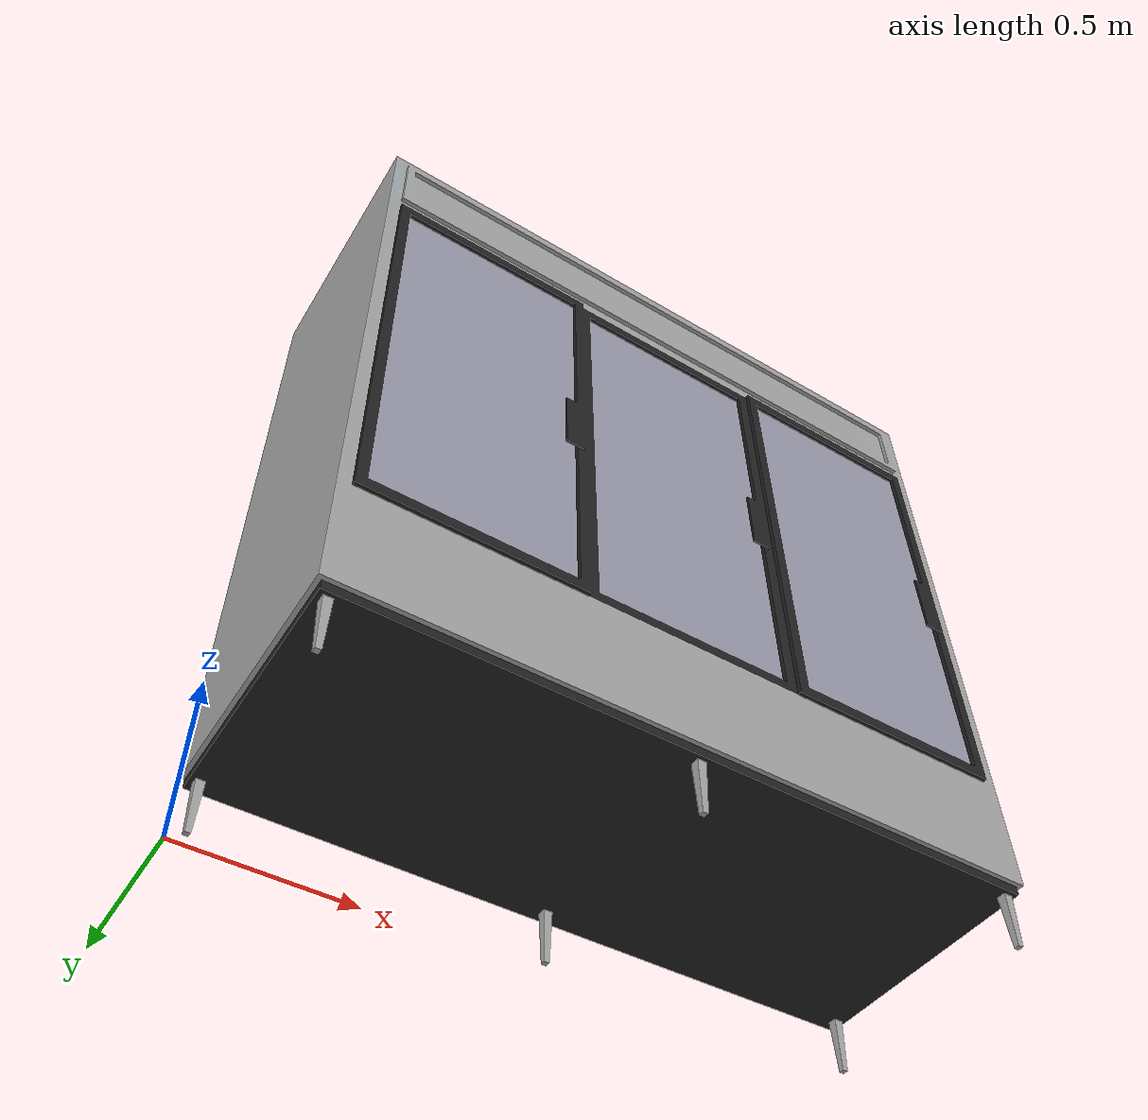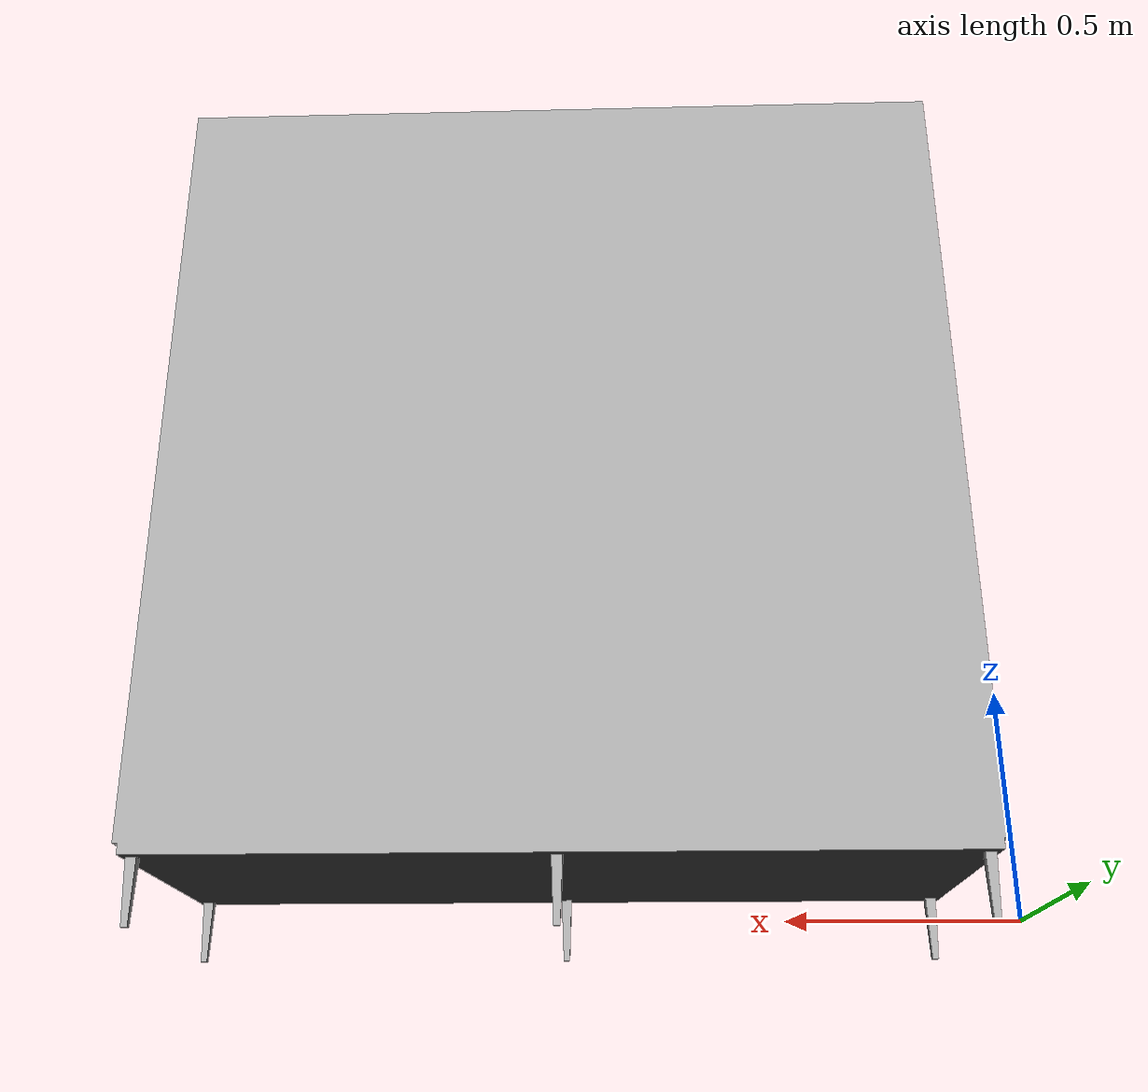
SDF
<?xml version="1.0" ?>
<sdf version="1.6">
  <model name="fridge">
    <pose>0 0 0 0 0 0</pose> <!-- Modify the pose as needed -->
    <static>true</static>   <!-- Set to true if the model doesn't move -->
    <link name="link">
      <visual name="visual">
        <geometry>
          <mesh>
            <uri>model://fridge/meshes/model.dae</uri> <!-- Replace with your .dae file path -->
            <scale>1 1 1</scale> <!-- Adjust scale if necessary -->
          </mesh>
        </geometry>
      </visual>
    </link>
  </model>
</sdf>
